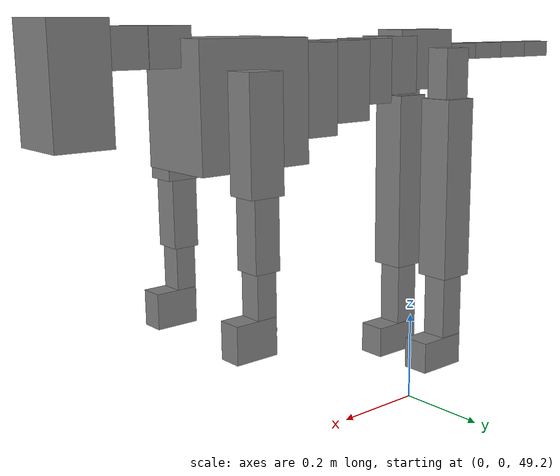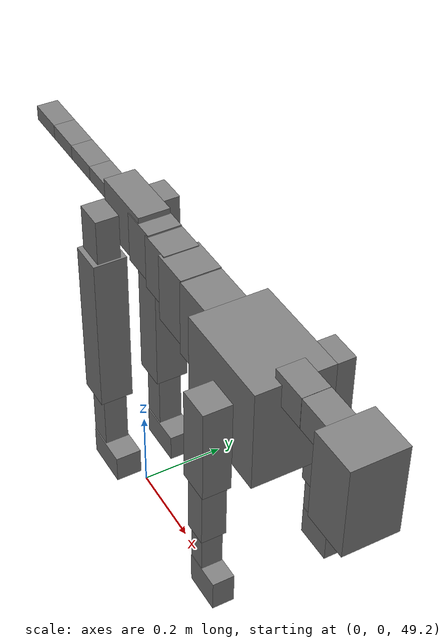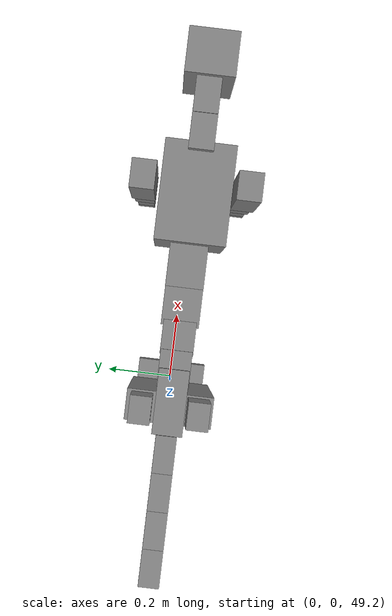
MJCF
<mujoco model="dog">

    <default>
        <joint armature="0.02" stiffness="1" damping="0.2" limited="true"/>
        <geom condim="3" friction="1 0.05 0.05" margin="0.01"/>
        <motor ctrllimited="true" ctrlrange="-1.0 1.0" forcelimited="true" gear="50"/>
    </default>

    <compiler inertiafromgeom="true" angle="radian"/>

    <option timestep="0.016" iterations="50" tolerance="1e-10" solver="Newton" jacobian="dense" cone="pyramidal"/>

    <size nconmax="20000" njmax="60000" nstack="5000000"/>
    <visual>
        <map force="0.1" zfar="30"/>
        <rgba haze="0.15 0.25 0.35 1"/>
        <quality shadowsize="2048"/>
        <global offwidth="800" offheight="800"/>
    </visual>

    <asset>
        <texture type="skybox" builtin="gradient" rgb1="0.3 0.5 0.7" rgb2="0 0 0" width="512" height="512"/>
        <texture name="texplane" type="2d" builtin="checker" rgb1=".2 .3 .4" rgb2=".1 0.15 0.2" width="512" height="512"
                 mark="cross" markrgb=".8 .8 .8"/>
        <texture name="texgeom" type="cube" builtin="flat" mark="cross" width="127" height="1278" rgb1="0.8 0.6 0.4"
                 rgb2="0.8 0.6 0.4" markrgb="1 1 1" random="0.01"/>

        <material name="matplane" reflectance="0.3" texture="texplane" texrepeat="1 1" texuniform="true"/>
        <material name="matgeom" texture="texgeom" texuniform="true" rgba="0.8 0.6 .4 1"/>
    </asset>

    <worldbody>
        <geom name="floor" pos="0 0 0" size="0 0 .25" type="plane" material="matplane" condim="3"/>

        <light directional="false" diffuse=".2 .2 .2" specular="0 0 0" pos="0 0 5" dir="0 0 -1" castshadow="false"/>
        <light mode="targetbodycom" target="torso" directional="false" diffuse=".8 .8 .8" specular="0.3 0.3 0.3"
               pos="0 0 4.0" dir="0 0 -1"/>

        <body name="root" pos="0 0 50">
            <freejoint name="root_1"/>
            <geom type="box" pos="0 0 -0.02" size="0.0774  0.0358  0.063" density="2030"/>

            <body name="spine1" pos="0.054 0 0">
                <joint name="spine1_y" axis="0 1 0" range="0 0.7" limited="true"/>
                <geom type="box" pos="0.02375 0 -0.03" size="0.04375  0.0375  0.05985" density="2030"/>

                <body name="spine2" pos="0.0612 0 0">
                    <joint name="spine2_y" axis="0 1 0" range="-0.15 0.15" limited="true"/>
                    <geom type="box" pos="0.03555  0  -0.04" size="0.04055  0.039  0.06615" density="2030"/>

                    <body name="spine3" pos="0.0730 0 0">
                        <joint name="spine3_y" axis="0 1 0" range="-0.15 0.15" limited="true"/>
                        <geom type="box" pos="0.03555  0  -0.057" size="0.04555  0.0445  0.081" density="2030"/>

                        <body name="spine4" pos="0.0780 0 0">
                            <joint name="spine4_y" axis="0 1 0" range="-0.15 0.15" limited="true"/>
                            <geom type="box" pos="0.05265  0  -0.07" size="0.05265  0.045  0.09135" density="2030"/>

                            <body name="torso" pos="0.1082 0 0">
                                <joint name="torso_y" axis="0 1 0" range="-0.15 0.15" limited="true"/>
                                <geom type="box" pos="0.11925  0  -0.085" size="0.11925  0.085  0.11745"
                                      density="2030"/>

                                <body name="neck1" pos="0.2160  0   0.0180">
                                    <joint name="neck1_y" axis="0 1 0" range="-1.2  -1" limited="true"/>
                                    <geom type="box" pos="0.0423  0  0" size="0.0423  0.03  0.036" density="2325"/>

                                    <body name="neck2" pos="0.0853  0  0">
                                        <joint name="neck2_y" axis="0 1 0" range="0.1  0" limited="true"/>
                                        <geom type="box" pos="0.0423  0  0" size="0.0423  0.03  0.036" density="2325"/>

                                        <body name="head" pos="0.0853  0  0">
                                            <joint name="head_y" axis="0 1 0" range="-0.3  -0.2" limited="true"/>
                                            <geom type="box" pos="0.0531  0  -0.055" size="0.0531  0.06  0.1044"
                                                  density="4030"/>

                                        </body>
                                    </body>
                                </body>

                                <body name="front_shoulder" pos="0.156  0   -0.0480">
                                    <joint name="front_shoulder_y" axis="0 1 0" range="-1 1.5" limited="true"/>
                                    <geom type="box" pos="0 0.13 -0.0814" size="0.0358  0.0306  0.1081" density="1158"/>
                                    <geom type="box" pos="0 -0.13 -0.0814" size="0.0358  0.0306  0.1081"
                                          density="1158"/>

                                    <body name="front_elbow" pos="0  0  -0.1629">
                                        <joint name="front_elbow_y" axis="0 1 0" range="-2 0" limited="true"/>
                                        <geom type="box" pos="0 0.13 -0.0807" size="0.0265  0.0271  0.0807"
                                              density="1081"/>
                                        <geom type="box" pos="0 -0.13 -0.0807" size="0.0265  0.0271  0.0807"
                                              density="1081"/>

                                        <body name="front_wrist" pos="0  0  -0.1613">
                                            <joint name="front_wrist_y" axis="0 1 0" range="-0.2 0" limited="true"/>
                                            <geom type="box" pos="0 0.13 -0.0497" size="0.0207  0.0230  0.0628"
                                                  density="1664"/>
                                            <geom type="box" pos="0 -0.13 -0.0497" size="0.0207  0.0230  0.0628"
                                                  density="1664"/>

                                            <body name="front_finger_end" pos="0  0  -0.0994">
                                                <joint name="front_finger_y" axis="0 1 0" range="-0.4 1"
                                                       limited="true"/>
                                                <geom type="box" pos="0.0238  0.13  -0.0208"
                                                      size="0.0436  0.0238  0.0358" density="1515"/>
                                                <geom type="box" pos="0.0238  -0.13  -0.0208"
                                                      size="0.0436  0.0238  0.0358" density="1515"/>

                                            </body>

                                        </body>
                                    </body>
                                </body>

                            </body>
                        </body>
                    </body>
                </body>
            </body>

            <body name="back_hip" pos="-0.03 0 -0.018">
                <joint name="back_hip_y" axis="0 1 0" range="-1.5 0.3" limited="true"/>
                <geom type="box" pos="0 0.07 -0.0498" size="0.0339  0.0266  0.0726" density="1154"/>
                <geom type="box" pos="0 -0.07 -0.0498" size="0.0339  0.0266  0.0726" density="1154"/>

                <body name="back_knee" pos="0  0  -0.0997">
                    <joint name="back_knee_y" axis="0 1 0" range="0 2.8" limited="true"/>
                    <geom type="box" pos="0 0.07 -0.1806" size="0.0392  0.0386  0.1961" density="1227"/>
                    <geom type="box" pos="0 -0.07 -0.1806" size="0.0392  0.0386  0.1961" density="1227"/>

                    <body name="back_ankle" pos="0  0  -0.3611">
                        <joint name="back_ankle_y" axis="0 1 0" range="-2.2 0" limited="true"/>
                        <geom type="box" pos="0 0.07 -0.0842" size="0.0281  0.0281  0.0955" density="1284"/>
                        <geom type="box" pos="0 -0.07 -0.0842" size="0.0281  0.0281  0.0955" density="1284"/>

                        <body name="back_toe_end" pos="0  0  -0.1685">
                            <joint name="back_toe_y" axis="0 1 0" range="-0.4 1" limited="true"/>
                            <geom type="box" pos="0.0305  0.07  -0.0191" size="0.0560  0.0305  0.0341" density="1515"/>
                            <geom type="box" pos="0.0305  -0.07  -0.0191" size="0.0560  0.0305  0.0341" density="1515"/>

                        </body>
                    </body>
                </body>
            </body>

            <body name="tail1" pos="-0.074 0 -0.006">
                <joint name="tail1_y" axis="0 1 0" range="-0.2 0.2" limited="true"/>
                <geom type="box" pos="-0.0536  0  0" size="0.045  0.025  0.0175" density="1587"/>

                <body name="tail2" pos="-0.09 0 0">
                    <joint name="tail2_y" axis="0 1 0" range="-0.2 0.2" limited="true"/>
                    <geom type="box" pos="-0.0536  0  0" size="0.045  0.025  0.0175" density="1587"/>

                    <body name="tail3" pos="-0.09 0 0">
                        <joint name="tail3_y" axis="0 1 0" range="-0.2 0.2" limited="true"/>
                        <geom type="box" pos="-0.0536  0  0" size="0.045  0.025  0.0175" density="1587"/>

                        <body name="tail4" pos="-0.09 0 0">
                            <joint name="tail4_y" axis="0 1 0" range="-0.2 0.2" limited="true"/>
                            <geom type="box" pos="-0.0536  0  0" size="0.045  0.025  0.0175" density="1587"/>

                        </body>
                    </body>
                </body>
            </body>
        </body>
    </worldbody>

    <actuator>
        <motor joint="spine1_y" forcerange="-150 150     "/>
        <motor joint="spine2_y" forcerange="-150 150     "/>
        <motor joint="spine3_y" forcerange="-150 150     "/>
        <motor joint="spine4_y" forcerange="-150 150     "/>
        <motor joint="torso_y" forcerange="-150 150     "/>
        <motor joint="neck1_y" forcerange="-100 100       "/>
        <motor joint="neck2_y" forcerange="-100 100       "/>
        <motor joint="head_y" forcerange="-150 150       "/>
        <motor joint="front_shoulder_y" forcerange="-113.32 190.76"/>
        <motor joint="front_elbow_y" forcerange="-192.22 104.56"/>
        <motor joint="front_wrist_y" forcerange="-120.83 62.97"/>
        <motor joint="front_finger_y" forcerange="-48.80 38.05"/>
        <motor joint="back_hip_y" forcerange="-294.61 259.97"/>
        <motor joint="back_knee_y" forcerange="-370.70 391.42"/>
        <motor joint="back_angle_y" forcerange="-168.60 180.65"/>
        <motor joint="back_toe_y" forcerange="-27.25 136.99"/>
        <motor joint="tail1_y" forcerange="-50 50     "/>
        <motor joint="tail2_y" forcerange="-50 50     "/>
        <motor joint="tail3_y" forcerange="-50 50     "/>
        <motor joint="tail4_y" forcerange="-50 50     "/>
    </actuator>
</mujoco>
